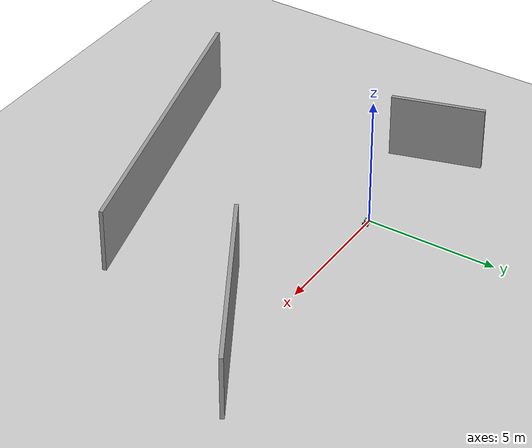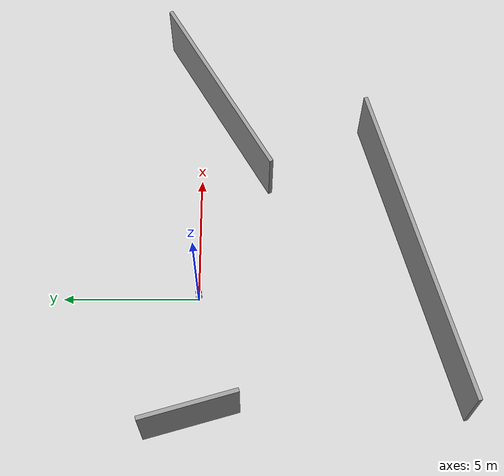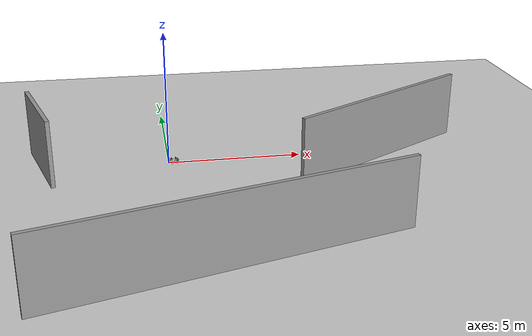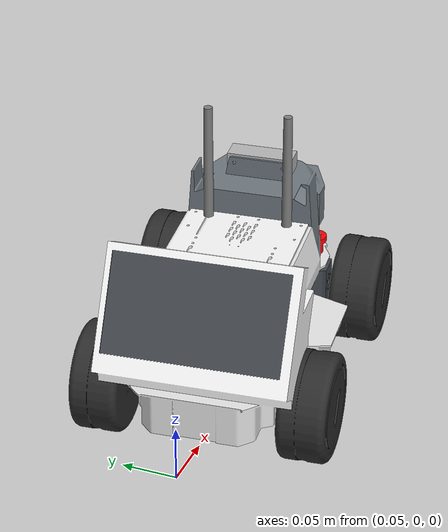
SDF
<sdf version="1.7">
 <world name="default">
  <light name="sun" type="directional">
   <pose>0 0 10 0 -0 0</pose>
   <diffuse>0.8 0.8 0.8 1</diffuse>
   <specular>0.2 0.2 0.2 1</specular>
   <attenuation>
    <range>1000</range>
    <constant>0.9</constant>
    <linear>0.01</linear>
    <quadratic>0.001</quadratic>
   </attenuation>
   <direction>-0.5 0.1 -0.9</direction>
   <spot><inner_angle>0</inner_angle><outer_angle>0</outer_angle><falloff>0</falloff></spot>
  </light>
  <model name="ground_plane">
   <static>1</static>
   <link name="link">
    <collision name="collision">
     <geometry><plane><normal>0 0 1</normal><size>100 100</size></plane></geometry>
     <surface>
      <contact><collide_bitmask>65535</collide_bitmask></contact>
      <friction><ode><mu>100</mu><mu2>50</mu2></ode></friction>
     </surface>
    </collision>
    <visual name="visual">
     <cast_shadows>0</cast_shadows>
     <geometry><plane><normal>0 0 1</normal><size>100 100</size></plane></geometry>
     <material>
      <script><uri>file://media/materials/scripts/gazebo.material</uri><name>Gazebo/Grey</name></script>
     </material>
    </visual>
   </link>
  </model>
  <physics type="ode">
   <max_step_size>0.01</max_step_size>
   <real_time_factor>1</real_time_factor>
   <real_time_update_rate>100</real_time_update_rate>
  </physics>
  <gravity>0 0 -9.8</gravity>
  <magnetic_field>6e-06 2.3e-05 -4.2e-05</magnetic_field>
  <atmosphere type="adiabatic"/>
  <scene><ambient>0.4 0.4 0.4 1</ambient><background>0.7 0.7 0.7 1</background><shadows>1</shadows></scene>
  <spherical_coordinates>
   <surface_model>EARTH_WGS84</surface_model>
   <latitude_deg>0</latitude_deg>
   <longitude_deg>0</longitude_deg>
   <elevation>0</elevation>
   <heading_deg>0</heading_deg>
  </spherical_coordinates>
  <model name="limo/">
   <link name="base_footprint">
    <inertial>
     <pose>0.007905 0 0.149408 0 -0 0</pose>
     <mass>2.3657</mass>
     <inertia>
      <ixx>0.240307</ixx>
      <ixy>0</ixy>
      <ixz>8.71335e-05</ixz>
      <iyy>0.961926</iyy>
      <iyz>0</iyz>
      <izz>0.961621</izz>
     </inertia>
    </inertial>
    <collision name="base_footprint_fixed_joint_lump__base_link_collision">
     <pose>0 0 0.15 0 -0 0</pose>
     <geometry><box><size>0.13 0.12 0.1</size></box></geometry>
    </collision>
    <collision name="base_footprint_fixed_joint_lump__depth_camera_collision_collision_1">
     <pose>0.084 0 0.18 0 -0 0</pose>
     <geometry><box><size>0.02 0.06 0.015</size></box></geometry>
    </collision>
    <collision name="base_footprint_fixed_joint_lump__imu_collision_collision_2">
     <pose>0 0 0.05 0 -0 0</pose>
     <geometry><box><size>0.001 0.001 0.001</size></box></geometry>
    </collision>
    <collision name="base_footprint_fixed_joint_lump__laser_collision_collision_3">
     <pose>0.103 0 0.116 0 -0 0</pose>
     <geometry><cylinder><length>0.016</length><radius>0.032</radius></cylinder></geometry>
    </collision>
    <visual name="base_footprint_fixed_joint_lump__base_link_visual">
     <pose>0 0 0 0 -0 1.57</pose>
     <geometry>
      <mesh>
       <scale>1 1 1</scale>
       <uri>/home/ubuntu/Documents/prj/src/ugv_gazebo_sim/limo/limo_description/meshes/limo_base.dae</uri>
      </mesh>
     </geometry>
    </visual>
    <visual name="base_footprint_fixed_joint_lump__depth_camera_visual_visual_1">
     <pose>0.084 0 0.18 0 -0 0</pose>
     <geometry><box><size>0.02 0.06 0.015</size></box></geometry>
    </visual>
    <visual name="base_footprint_fixed_joint_lump__imu_visual_visual_2">
     <pose>0 0 0.05 0 -0 0</pose>
     <geometry><box><size>0.001 0.001 0.001</size></box></geometry>
    </visual>
    <visual name="base_footprint_fixed_joint_lump__laser_visual_visual_3">
     <pose>0.103 0 0.116 0 -0 0</pose>
     <geometry><cylinder><length>0.01</length><radius>0.02</radius></cylinder></geometry>
    </visual>
    <sensor name="sensor_camera" type="depth">
     <always_on>1</always_on>
     <visualize>1</visualize>
     <update_rate>10</update_rate>
     <camera name="head">
      <horizontal_fov>1.39626</horizontal_fov>
      <image><width>640</width><height>480</height><format>R8G8B8</format></image>
      <clip><near>0.02</near><far>300</far></clip>
     </camera>
     <plugin name="gazebo_ros_depth_camera_sensor" filename="libgazebo_ros_openni_kinect.so">
      <baseline>0.2</baseline>
      <alwaysOn>1</alwaysOn>
      <updateRate>0.0</updateRate>
      <cameraName>camera_ir</cameraName>
      <imageTopicName>/limo/color/image_raw</imageTopicName>
      <cameraInfoTopicName>/limo/color/camera_info</cameraInfoTopicName>
      <depthImageTopicName>/limo/depth/image_raw</depthImageTopicName>
      <depthImageCameraInfoTopicName>/limo/depth/camera_info</depthImageCameraInfoTopicName>
      <pointCloudTopicName>/limo/depth/points</pointCloudTopicName>
      <frameName>depth_link</frameName>
      <cameraname>depth_camera_link</cameraname>
      <pointCloudCutoff>0.5</pointCloudCutoff>
      <pointCloudCutoffMax>3.0</pointCloudCutoffMax>
      <distortionK1>0</distortionK1>
      <distortionK2>0</distortionK2>
      <distortionK3>0</distortionK3>
      <distortionT1>0</distortionT1>
      <distortionT2>0</distortionT2>
      <CxPrime>0</CxPrime>
      <Cx>0</Cx>
      <Cy>0</Cy>
      <focalLength>0</focalLength>
      <hackBaseline>0</hackBaseline>
      <robotNamespace>/</robotNamespace>
     </plugin>
     <pose>0.084 0 0.18 0 -0 0</pose>
    </sensor>
    <sensor name="imu_sensor" type="imu">
     <always_on>1</always_on>
     <update_rate>100</update_rate>
     <visualize>1</visualize>
     <topic>__default_topic__</topic>
     <plugin name="imu_plugin" filename="libgazebo_ros_imu_sensor.so">
      <topicName>/limo/imu</topicName>
      <bodyName>imu_link</bodyName>
      <updateRateHZ>100.0</updateRateHZ>
      <gaussianNoise>0.001</gaussianNoise>
      <xyzOffset>0 0 0</xyzOffset>
      <rpyOffset>0 0 0</rpyOffset>
      <frameName>imu_link</frameName>
      <robotNamespace>/</robotNamespace>
     </plugin>
     <pose>0 0 0.05 0 -0 0</pose>
    </sensor>
    <sensor name="laser_sensor" type="ray">
     <visualize>0</visualize>
     <update_rate>8</update_rate>
     <ray>
      <scan>
       <horizontal>
        <samples>720</samples>
        <resolution>1</resolution>
        <min_angle>-2.0944</min_angle>
        <max_angle>2.0944</max_angle>
       </horizontal>
       <vertical><samples>1</samples><min_angle>0</min_angle><max_angle>0</max_angle></vertical>
      </scan>
      <range><min>0.05</min><max>8</max><resolution>0.01</resolution></range>
      <noise><type>gaussian</type><mean>0</mean><stddev>0.01</stddev></noise>
     </ray>
     <plugin name="gazebo_ros_laser_sensor" filename="libgazebo_ros_laser.so">
      <topicName>/limo/scan</topicName>
      <frameName>laser_link</frameName>
      <robotNamespace>/</robotNamespace>
     </plugin>
     <pose>0.103 0 0.116 0 -0 0</pose>
    </sensor>
   </link>
   <joint name="left_steering_hinge_wheel" type="revolute">
    <pose relative_to="base_footprint">0.1 0.07 0.049002 0 -0 0</pose>
    <parent>base_footprint</parent>
    <child>left_steering_hinge</child>
    <axis>
     <xyz>0 0 1</xyz>
     <limit><lower>-0.523599</lower><upper>0.523599</upper><effort>5</effort><velocity>0.5</velocity></limit>
     <dynamics>
      <damping>1</damping>
      <friction>2</friction>
      <spring_reference>0</spring_reference>
      <spring_stiffness>0</spring_stiffness>
     </dynamics>
    </axis>
   </joint>
   <link name="left_steering_hinge">
    <pose relative_to="left_steering_hinge_wheel">0 0 0 0 -0 0</pose>
    <inertial>
     <mass>0.25</mass>
     <inertia><ixx>0.00525</ixx><ixy>0</ixy><ixz>0</ixz><iyy>0.00035</iyy><iyz>0</iyz><izz>0.00525</izz></inertia>
    </inertial>
    <collision name="left_steering_hinge_collision">
     <pose>0 0.0225 0 1.57 -0 0</pose>
     <geometry><cylinder><length>0.045</length><radius>0.035</radius></cylinder></geometry>
    </collision>
    <visual name="left_steering_hinge_visual">
     <geometry><cylinder><length>0.0001</length><radius>0.0001</radius></cylinder></geometry>
    </visual>
   </link>
   <joint name="front_left_wheel" type="revolute">
    <pose relative_to="left_steering_hinge">0 0 0 0 -0 0</pose>
    <parent>left_steering_hinge</parent>
    <child>front_left_wheel_link</child>
    <axis>
     <xyz>0 1 0</xyz>
     <limit><lower>-1e+16</lower><upper>1e+16</upper></limit>
     <dynamics><spring_reference>0</spring_reference><spring_stiffness>0</spring_stiffness></dynamics>
    </axis>
   </joint>
   <link name="front_left_wheel_link">
    <pose relative_to="front_left_wheel">0 0 0 0 -0 0</pose>
    <inertial>
     <mass>0.25</mass>
     <inertia><ixx>0.00525</ixx><ixy>0</ixy><ixz>0</ixz><iyy>0.00035</iyy><iyz>0</iyz><izz>0.00525</izz></inertia>
    </inertial>
    <collision name="front_left_wheel_link_collision">
     <pose>0 0.0225 0 1.57 -0 0</pose>
     <geometry><cylinder><length>0.045</length><radius>0.045</radius></cylinder></geometry>
    </collision>
    <visual name="front_left_wheel_link_visual">
     <geometry>
      <mesh>
       <scale>1 1 1</scale>
       <uri>/home/ubuntu/Documents/prj/src/ugv_gazebo_sim/limo/limo_description/meshes/limo_wheel.dae</uri>
      </mesh>
     </geometry>
    </visual>
   </link>
   <joint name="rear_left_wheel" type="revolute">
    <pose relative_to="base_footprint">-0.1 0.07 0.049002 0 -0 0</pose>
    <parent>base_footprint</parent>
    <child>rear_left_wheel_link</child>
    <axis>
     <xyz>0 1 0</xyz>
     <limit><lower>-1e+16</lower><upper>1e+16</upper></limit>
     <dynamics><spring_reference>0</spring_reference><spring_stiffness>0</spring_stiffness></dynamics>
    </axis>
   </joint>
   <link name="rear_left_wheel_link">
    <pose relative_to="rear_left_wheel">0 0 0 0 -0 0</pose>
    <inertial>
     <mass>0.5</mass>
     <inertia><ixx>0.01055</ixx><ixy>0</ixy><ixz>0</ixz><iyy>0.00075</iyy><iyz>0</iyz><izz>0.01055</izz></inertia>
    </inertial>
    <collision name="rear_left_wheel_link_collision">
     <pose>0 0.0225 0 1.57 -0 0</pose>
     <geometry><cylinder><length>0.045</length><radius>0.045</radius></cylinder></geometry>
    </collision>
    <visual name="rear_left_wheel_link_visual">
     <geometry>
      <mesh>
       <scale>1 1 1</scale>
       <uri>/home/ubuntu/Documents/prj/src/ugv_gazebo_sim/limo/limo_description/meshes/limo_wheel.dae</uri>
      </mesh>
     </geometry>
    </visual>
   </link>
   <joint name="rear_right_wheel" type="revolute">
    <pose relative_to="base_footprint">-0.1 -0.07 0.049002 3.14159 -0 0</pose>
    <parent>base_footprint</parent>
    <child>rear_right_wheel_link</child>
    <axis>
     <xyz>0 -1 0</xyz>
     <limit><lower>-1e+16</lower><upper>1e+16</upper></limit>
     <dynamics><spring_reference>0</spring_reference><spring_stiffness>0</spring_stiffness></dynamics>
    </axis>
   </joint>
   <link name="rear_right_wheel_link">
    <pose relative_to="rear_right_wheel">0 0 0 0 -0 0</pose>
    <inertial>
     <mass>0.5</mass>
     <inertia><ixx>0.01055</ixx><ixy>0</ixy><ixz>0</ixz><iyy>0.00075</iyy><iyz>0</iyz><izz>0.01055</izz></inertia>
    </inertial>
    <collision name="rear_right_wheel_link_collision">
     <pose>0 0.0225 0 1.57 -0 0</pose>
     <geometry><cylinder><length>0.045</length><radius>0.045</radius></cylinder></geometry>
    </collision>
    <visual name="rear_right_wheel_link_visual">
     <geometry>
      <mesh>
       <scale>1 1 1</scale>
       <uri>/home/ubuntu/Documents/prj/src/ugv_gazebo_sim/limo/limo_description/meshes/limo_wheel.dae</uri>
      </mesh>
     </geometry>
    </visual>
   </link>
   <joint name="right_steering_hinge_wheel" type="revolute">
    <pose relative_to="base_footprint">0.1 -0.07 0.049002 3.14159 -0 0</pose>
    <parent>base_footprint</parent>
    <child>right_steering_hinge</child>
    <axis>
     <xyz>0 0 -1</xyz>
     <limit><lower>-0.523599</lower><upper>0.523599</upper><effort>5</effort><velocity>0.5</velocity></limit>
     <dynamics>
      <damping>1</damping>
      <friction>2</friction>
      <spring_reference>0</spring_reference>
      <spring_stiffness>0</spring_stiffness>
     </dynamics>
    </axis>
   </joint>
   <link name="right_steering_hinge">
    <pose relative_to="right_steering_hinge_wheel">0 0 0 0 -0 0</pose>
    <inertial>
     <mass>0.25</mass>
     <inertia><ixx>0.00525</ixx><ixy>0</ixy><ixz>0</ixz><iyy>0.00035</iyy><iyz>0</iyz><izz>0.00525</izz></inertia>
    </inertial>
    <collision name="right_steering_hinge_collision">
     <pose>0 0.0225 0 1.57 -0 0</pose>
     <geometry><cylinder><length>0.045</length><radius>0.035</radius></cylinder></geometry>
    </collision>
    <visual name="right_steering_hinge_visual">
     <geometry><cylinder><length>0.0001</length><radius>0.0001</radius></cylinder></geometry>
    </visual>
   </link>
   <joint name="front_right_wheel" type="revolute">
    <pose relative_to="right_steering_hinge">0 0 0 0 -0 0</pose>
    <parent>right_steering_hinge</parent>
    <child>front_right_wheel_link</child>
    <axis>
     <xyz>0 -1 0</xyz>
     <limit><lower>-1e+16</lower><upper>1e+16</upper></limit>
     <dynamics><spring_reference>0</spring_reference><spring_stiffness>0</spring_stiffness></dynamics>
    </axis>
   </joint>
   <link name="front_right_wheel_link">
    <pose relative_to="front_right_wheel">0 0 0 0 -0 0</pose>
    <inertial>
     <mass>0.25</mass>
     <inertia><ixx>0.00525</ixx><ixy>0</ixy><ixz>0</ixz><iyy>0.00035</iyy><iyz>0</iyz><izz>0.00525</izz></inertia>
    </inertial>
    <collision name="front_right_wheel_link_collision">
     <pose>0 0.0225 0 1.57 -0 0</pose>
     <geometry><cylinder><length>0.045</length><radius>0.045</radius></cylinder></geometry>
    </collision>
    <visual name="front_right_wheel_link_visual">
     <geometry>
      <mesh>
       <scale>1 1 1</scale>
       <uri>/home/ubuntu/Documents/prj/src/ugv_gazebo_sim/limo/limo_description/meshes/limo_wheel.dae</uri>
      </mesh>
     </geometry>
    </visual>
   </link>
   <static>0</static>
   <plugin name="gazebo_ros_control" filename="libgazebo_ros_control.so">
    <robotNamespace>/</robotNamespace>
   </plugin>
   <plugin name="four_diff_controller" filename="libgazebo_ros_ackerman.so">
    <updateRate>100.0</updateRate>
    <robotNamespace>/</robotNamespace>
    <leftFrontJoint>front_left_wheel</leftFrontJoint>
    <rightFrontJoint>front_right_wheel</rightFrontJoint>
    <leftRearJoint>rear_left_wheel</leftRearJoint>
    <rightRearJoint>rear_right_wheel</rightRearJoint>
    <leftHingeJoint>left_steering_hinge_wheel</leftHingeJoint>
    <rightHingeJoint>right_steering_hinge_wheel</rightHingeJoint>
    <wheelSeparation>0.172</wheelSeparation>
    <wheelDiameter>0.09</wheelDiameter>
    <robotBaseFrame>base_footprint</robotBaseFrame>
    <commandTopic>cmd_vel</commandTopic>
    <torque>50</torque>
    <broadcastTF>1</broadcastTF>
    <odometryTopic>odom</odometryTopic>
    <odometryFrame>odom</odometryFrame>
    <covariance_x>0.000100</covariance_x>
    <covariance_y>0.000100</covariance_y>
    <covariance_yaw>0.010000</covariance_yaw>
   </plugin>
   <pose>0.221155 0.011762 -0.004185 7.3e-05 0.002817 0.118648</pose>
  </model>
  <model name="3_walls">
   <pose>3.51898 -4.0545 0 0 -0 0</pose>
   <link name="Wall_0">
    <collision name="Wall_0_Collision">
     <geometry><box><size>3.5 0.15 2.5</size></box></geometry>
     <pose>0 0 1.25 0 -0 0</pose>
    </collision>
    <visual name="Wall_0_Visual">
     <pose>0 0 1.25 0 -0 0</pose>
     <geometry><box><size>3.5 0.15 2.5</size></box></geometry>
     <material>
      <script><uri>file://media/materials/scripts/gazebo.material</uri><name>Gazebo/Grey</name></script>
      <ambient>1 1 1 1</ambient>
     </material>
     <meta><layer>0</layer></meta>
    </visual>
    <pose>-8.14898 4.1995 0 0 -0 -7.5708</pose>
   </link>
   <link name="Wall_2">
    <collision name="Wall_2_Collision">
     <geometry><box><size>12.25 0.15 2.5</size></box></geometry>
     <pose>0 0 1.25 0 -0 0</pose>
    </collision>
    <visual name="Wall_2_Visual">
     <pose>0 0 1.25 0 -0 0</pose>
     <geometry><box><size>12.25 0.15 2.5</size></box></geometry>
     <material>
      <script><uri>file://media/materials/scripts/gazebo.material</uri><name>Gazebo/Grey</name></script>
      <ambient>1 1 1 1</ambient>
     </material>
     <meta><layer>0</layer></meta>
    </visual>
    <pose>-2.05479 -3.80813 0 0 -0 0.261799</pose>
   </link>
   <link name="Wall_4">
    <collision name="Wall_4_Collision">
     <geometry><box><size>8 0.15 2.5</size></box></geometry>
     <pose>0 0 1.25 0 -0 0</pose>
    </collision>
    <visual name="Wall_4_Visual">
     <pose>0 0 1.25 0 -0 0</pose>
     <geometry><box><size>8 0.15 2.5</size></box></geometry>
     <material>
      <script><uri>file://media/materials/scripts/gazebo.material</uri><name>Gazebo/Grey</name></script>
      <ambient>1 1 1 1</ambient>
     </material>
     <meta><layer>0</layer></meta>
    </visual>
    <pose>4.48889 3.40089 0 0 -0 -2.61799</pose>
   </link>
   <static>1</static>
  </model>
 </world>
</sdf>
